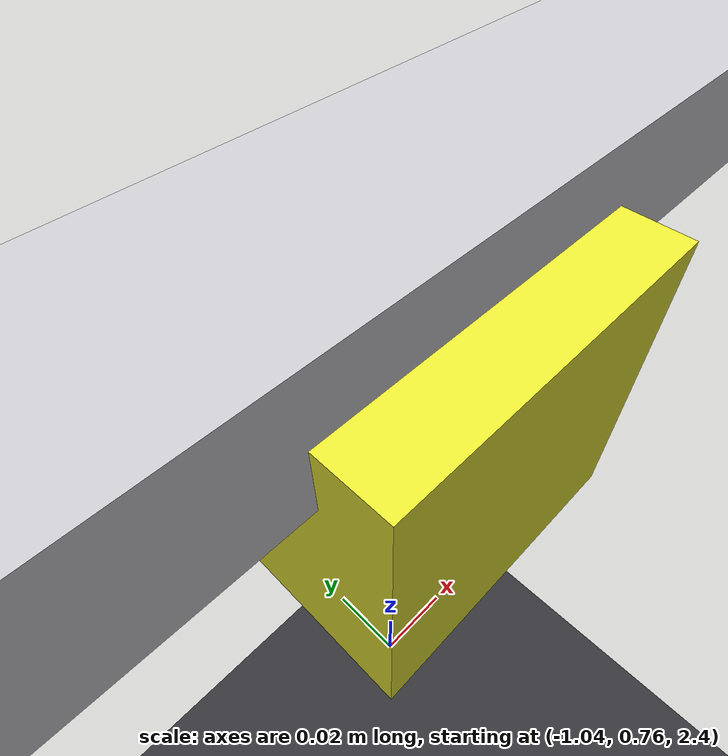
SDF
<?xml version="1.0" ?>
<!--
  Phase 0 underground parking lot world.
  Floor + ceiling + a row of parking-stall markers + the closed-loop track.
  Lighting and physics tuned for headless CI.
-->
<sdf version="1.9">
  <world name="parking_lot">
    <gravity>0 0 -9.81</gravity>

    <plugin filename="gz-sim-physics-system" name="gz::sim::systems::Physics"/>
    <plugin filename="gz-sim-user-commands-system" name="gz::sim::systems::UserCommands"/>
    <plugin filename="gz-sim-scene-broadcaster-system" name="gz::sim::systems::SceneBroadcaster"/>
    <plugin filename="gz-sim-sensors-system" name="gz::sim::systems::Sensors"/>

    <light name="ambient" type="directional">
      <pose>0 0 5 0 0 0</pose>
      <diffuse>0.85 0.85 0.85 1</diffuse>
      <specular>0.2 0.2 0.2 1</specular>
      <direction>0 0 -1</direction>
    </light>

    <model name="floor">
      <static>true</static>
      <link name="link">
        <collision name="col"><geometry><plane>
          <normal>0 0 1</normal><size>30 30</size>
        </plane></geometry></collision>
        <visual name="vis"><geometry><plane>
          <normal>0 0 1</normal><size>30 30</size>
        </plane></geometry>
          <material><ambient>0.20 0.20 0.22 1</ambient><diffuse>0.20 0.20 0.22 1</diffuse></material>
        </visual>
      </link>
    </model>

    <model name="ceiling">
      <static>true</static>
      <pose>0 0 2.7 0 0 0</pose>
      <link name="link">
        <visual name="vis"><geometry><box><size>30 30 0.05</size></box></geometry>
          <material><ambient>0.85 0.85 0.85 1</ambient></material></visual>
      </link>
    </model>

    <model name="track_north">
      <static>true</static>
      <pose>0 0.8 2.5 0 0 0</pose>
      <link name="rail"><visual name="v"><geometry><box>
        <size>3.5 0.06 0.04</size>
      </box></geometry>
        <material><ambient>0.78 0.78 0.80 1</ambient></material></visual></link>
    </model>

    <model name="track_south">
      <static>true</static>
      <pose>0 -0.8 2.5 0 0 0</pose>
      <link name="rail"><visual name="v"><geometry><box>
        <size>3.5 0.06 0.04</size>
      </box></geometry>
        <material><ambient>0.78 0.78 0.80 1</ambient></material></visual></link>
    </model>

    <!-- 4 support points for charging piles, two per side -->
    <model name="support_n1"><static>true</static>
      <pose>-1.0 0.8 2.45 0 0 0</pose>
      <link name="l"><visual name="v"><geometry><box><size>0.10 0.10 0.10</size></box></geometry>
        <material><ambient>0.9 0.9 0.2 1</ambient></material></visual></link></model>
    <model name="support_n2"><static>true</static>
      <pose>1.0 0.8 2.45 0 0 0</pose>
      <link name="l"><visual name="v"><geometry><box><size>0.10 0.10 0.10</size></box></geometry>
        <material><ambient>0.9 0.9 0.2 1</ambient></material></visual></link></model>
    <model name="support_s1"><static>true</static>
      <pose>-1.0 -0.8 2.45 0 0 0</pose>
      <link name="l"><visual name="v"><geometry><box><size>0.10 0.10 0.10</size></box></geometry>
        <material><ambient>0.9 0.9 0.2 1</ambient></material></visual></link></model>
    <model name="support_s2"><static>true</static>
      <pose>1.0 -0.8 2.45 0 0 0</pose>
      <link name="l"><visual name="v"><geometry><box><size>0.10 0.10 0.10</size></box></geometry>
        <material><ambient>0.9 0.9 0.2 1</ambient></material></visual></link></model>

  </world>
</sdf>
